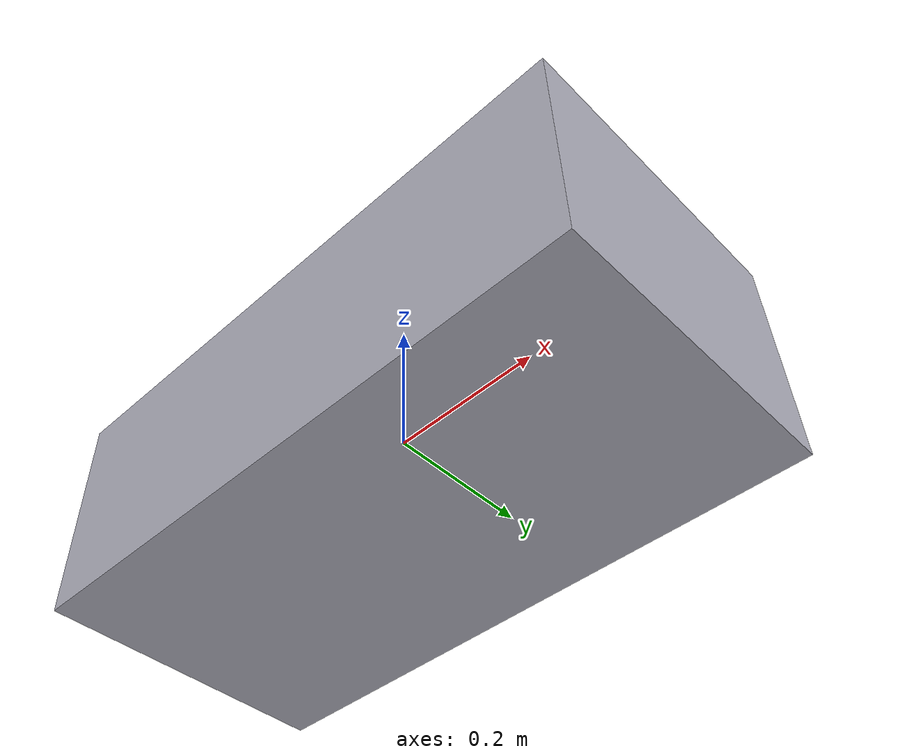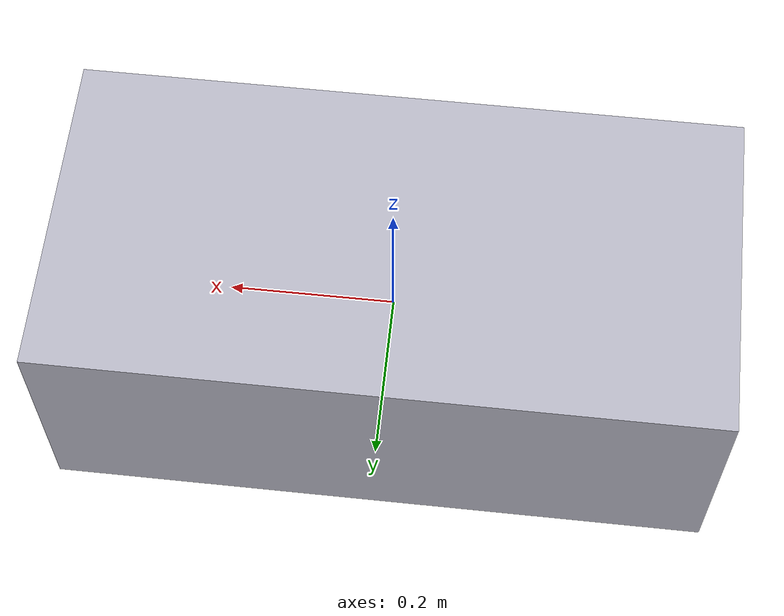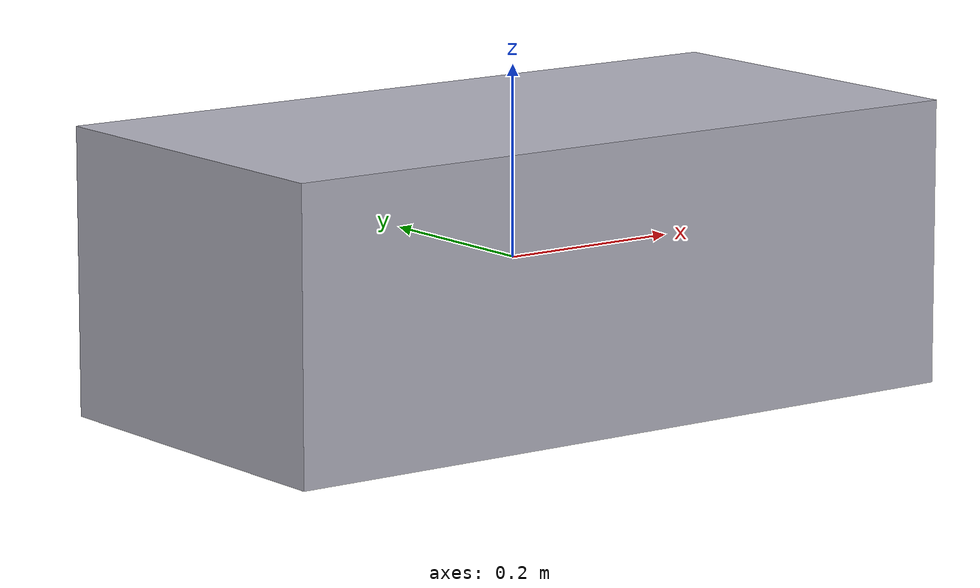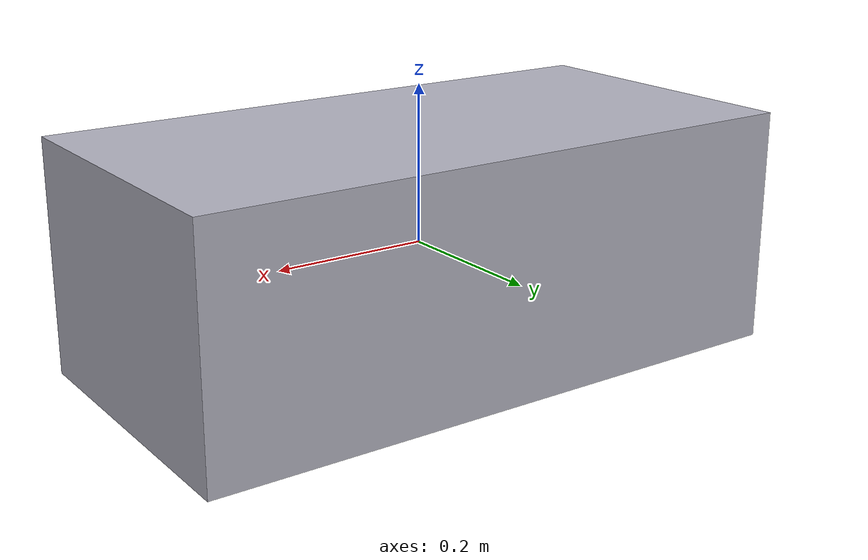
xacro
<?xml version="1.0"?>
<robot xmlns:xacro="http://ros.org/wiki/xacro" name="base_link">

  <!-- Workpiece dimensions -->
  <xacro:property name="length" value="0.80"/>  <!-- 80cm -->
  <xacro:property name="width" value="0.40"/>   <!-- 40cm -->
  <xacro:property name="height" value="0.30"/>  <!-- 30cm -->

  <link name="base_link">
    <visual>
      <geometry>
        <box size="${length} ${width} ${height}"/>
      </geometry>
      <material name="steel">
        <color rgba="0.7 0.7 0.75 1"/>
      </material>
    </visual>
    <collision>
      <geometry>
        <box size="${length} ${width} ${height}"/>
      </geometry>
    </collision>
    <inertial>
      <mass value="25.0"/>
      <origin xyz="0 0 0" rpy="0 0 0"/>
      <inertia ixx="1.0" ixy="0.0" ixz="0.0" iyy="2.0" iyz="0.0" izz="2.5"/>
    </inertial>
  </link>

  <!-- Gazebo properties for the workpiece -->
  <gazebo reference="base_link">
    <visual>
      <material>
        <ambient>0.7 0.7 0.75 1</ambient>
        <diffuse>0.7 0.7 0.75 1</diffuse>
        <specular>0.8 0.8 0.8 1</specular>
      </material>
    </visual>
    <collision>
      <surface>
        <friction>
          <ode>
            <mu>0.6</mu>
            <mu2>0.6</mu2>
          </ode>
        </friction>
      </surface>
    </collision>
    <gravity>0</gravity>
    <static>true</static>
  </gazebo>

  <gazebo reference="workpiece">
    <gravity>0</gravity>
  </gazebo>
</robot>
